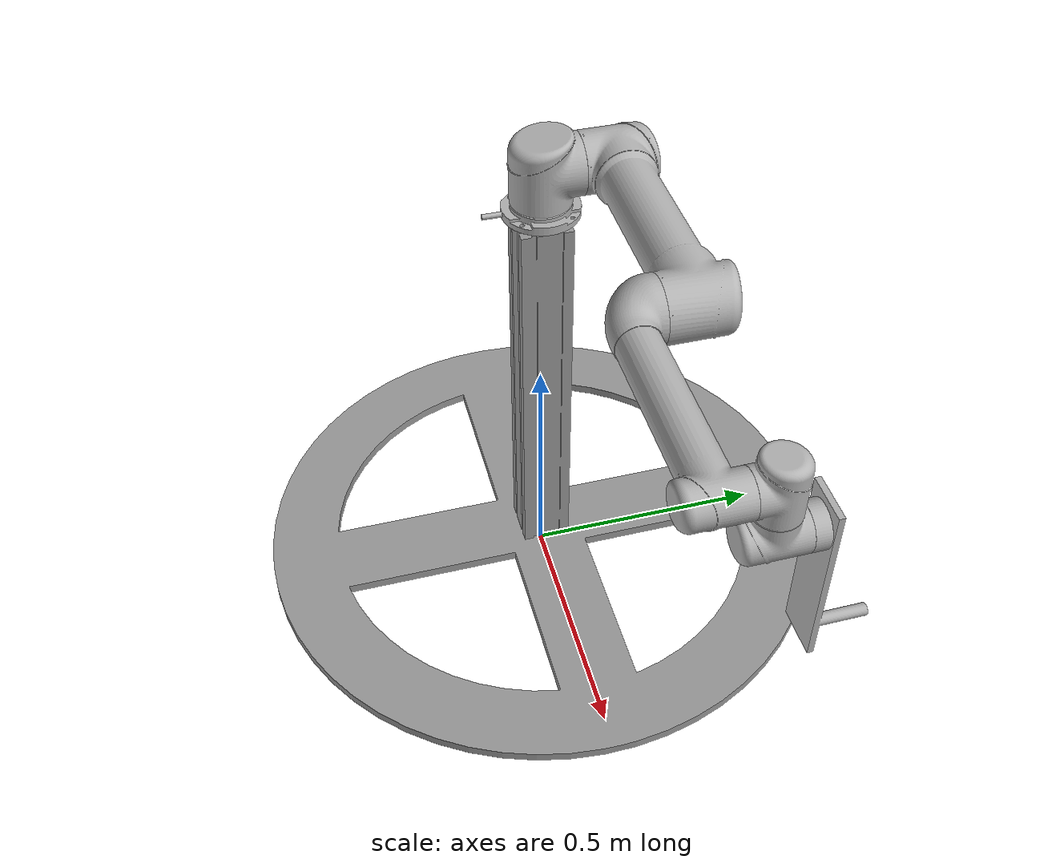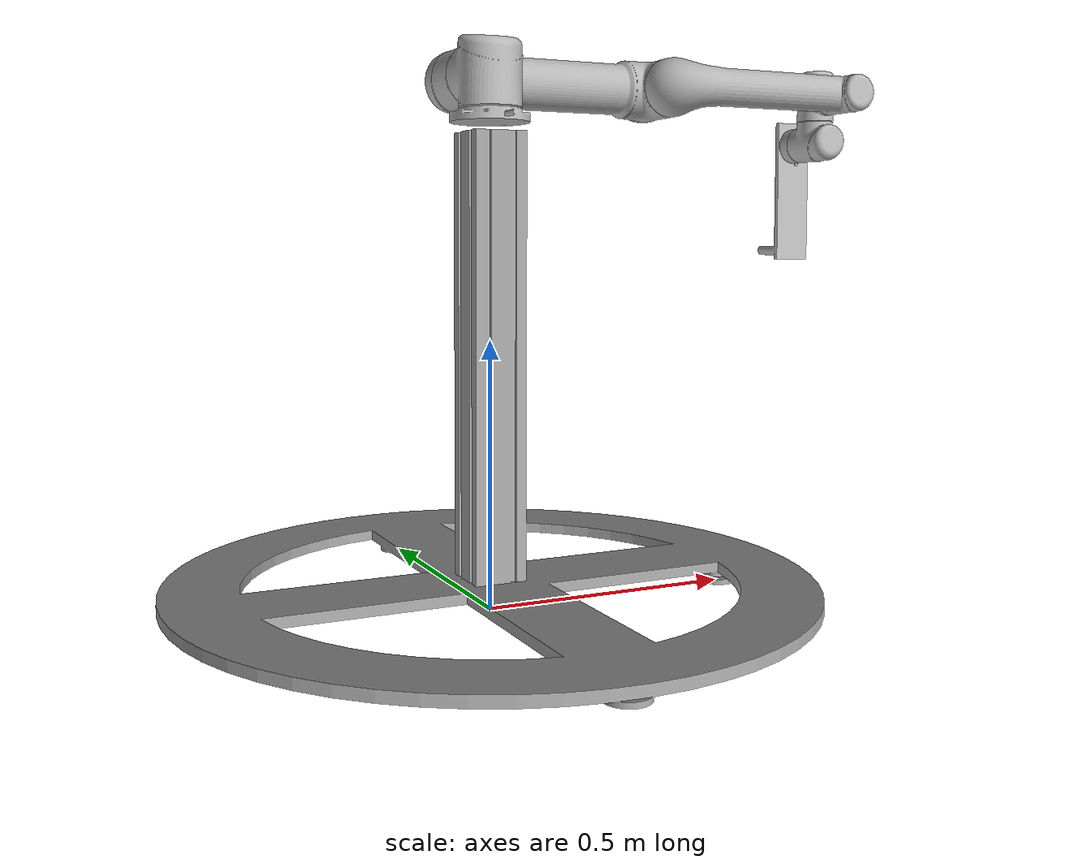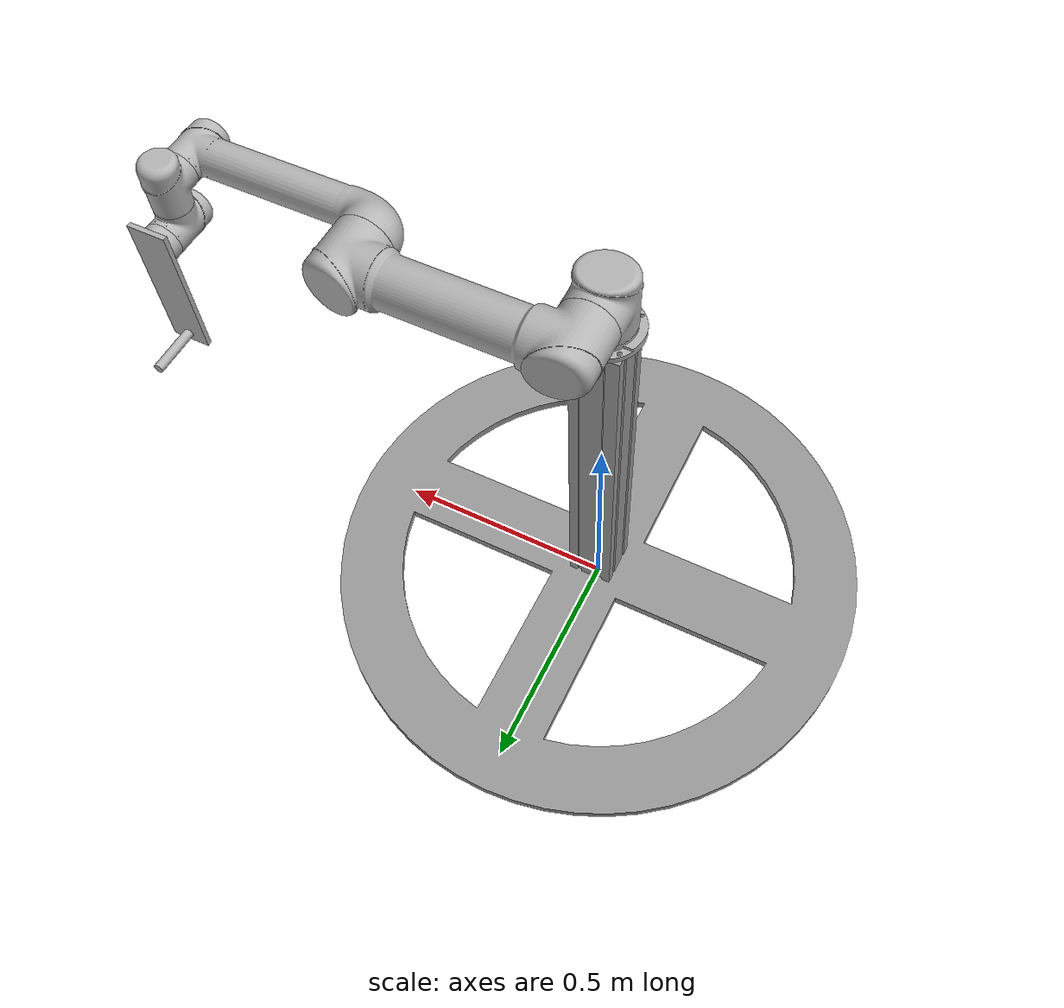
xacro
<?xml version="1.0"?>
<robot xmlns:xacro="http://www.ros.org/wiki/xacro"
       name="ur5" >

  <!-- common stuff -->
  <xacro:include filename="$(find ur_description)/urdf/gazebo.urdf.xacro" />

  <!-- ur5 -->
  <xacro:include filename="$(find ur_description)/urdf/ur5.urdf.xacro" />

  <!-- arm -->
  <xacro:ur5_robot prefix="" joint_limited="true"/>

  <!-- gazebo material-->
  <xacro:include filename="$(find ur_description)/urdf/ur5.gazebo" />
  <xacro:include filename="$(find ur_description)/urdf/materials.xacro" />

  <!-- param-->
  <xacro:property name="width" value="0.1" /> <!-- Square dimensions (widthxwidth) of beams -->
  <xacro:property name="height1" value="0.9" />

  <link name="world" />

  <joint name="world_joint" type="fixed">
    <parent link="world" />
    <child link = "link1" />
    <origin xyz="0.0 0.0 0.0" rpy="0.0 0.0 0.0" />
  </joint>
  <link name="link1">
    <collision>
      <origin xyz="0.0 0.0 0.45" rpy="0 0 0"/>
      <geometry>
	<box size="0.1 0.1 0.9"/>
      </geometry>
    </collision>

    <visual>
      <origin xyz="-0.6 -0.6 0.0" rpy="0 0 0"/>
      <geometry>
	<mesh filename="package://ur_description/meshes/ur5/visual/column.stl" scale="0.001 0.001 0.001"/>
      </geometry>
      <material name="gray"/>
    </visual>

    <inertial>
      <origin xyz="-0.6 -0.6 0.0" rpy="0 0 0"/>
      <mass value="1"/>
      <inertia
	  ixx="1.0" ixy="0.0" ixz="0.0"
	  iyy="1.0" iyz="0.0"
	  izz="1.0"/>
    </inertial>
  </link>

  <joint name="link1_joint" type="fixed">
    <parent link="link1" />
    <child link = "base_link" />
    <origin xyz="0.0 0.0 ${height1}" rpy="0.0 0.0 0.0" />
  </joint>

</robot>

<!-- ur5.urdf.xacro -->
<robot xmlns:xacro="http://www.ros.org/wiki/xacro">

  <xacro:include filename="$(find ur_description)/urdf/ur5.transmission.xacro" />
  <xacro:include filename="$(find ur_description)/urdf/ur5.gazebo.xacro" />

  <property name="pi" value="3.14159265" />

  <!-- Inertia parameters -->
  <property name="base_mass" value="4.0" />  <!-- This mass might be incorrect -->
  <property name="shoulder_mass" value="3.7000" />
  <property name="upper_arm_mass" value="8.3930" />
  <property name="forearm_mass" value="2.2750" />
  <property name="wrist_1_mass" value="1.2190" />
  <property name="wrist_2_mass" value="1.2190" />
  <property name="wrist_3_mass" value="0.1879" />

  <property name="shoulder_cog" value="0.0 0.00193 -0.02561" />
  <property name="upper_arm_cog" value="0.0 -0.024201 0.2125" />
  <property name="forearm_cog" value="0.0 0.0265 0.11993" />
  <property name="wrist_1_cog" value="0.0 0.110949 0.01634" />
  <property name="wrist_2_cog" value="0.0 0.0018 0.11099" />
  <property name="wrist_3_cog" value="0.0 0.001159 0.0" />

  <!-- Kinematic model -->
  <!-- Properties from urcontrol.conf -->
  <property name="ur5_d1" value="0.089159" />
  <property name="ur5_a2" value="-0.42500" />
  <property name="ur5_a3" value="-0.39225" />
  <property name="ur5_d4" value="0.10915" />
  <property name="ur5_d5" value="0.09465" />
  <property name="ur5_d6" value="0.0823" />

  <!-- Arbitrary offsets for shoulder/elbow joints -->
  <property name="shoulder_offset" value="0.13585" />  <!-- measured from model -->
  <property name="elbow_offset" value="-0.1197" /> <!-- measured from model -->

  <!-- link lengths used in model -->
  <property name="shoulder_height" value="${ur5_d1}" />
  <property name="upper_arm_length" value="${-ur5_a2}" />
  <property name="forearm_length" value="${-ur5_a3}" />
  <property name="wrist_1_length" value="${ur5_d4 - elbow_offset - shoulder_offset}" />
  <property name="wrist_2_length" value="${ur5_d5}" />
  <property name="wrist_3_length" value="${ur5_d6}" />
  <!--property name="shoulder_height" value="0.089159" /-->
  <!--property name="shoulder_offset" value="0.13585" /-->  <!-- shoulder_offset - elbow_offset + wrist_1_length = 0.10915 -->
  <!--property name="upper_arm_length" value="0.42500" /-->
  <!--property name="elbow_offset" value="0.1197" /-->       <!-- CAD measured -->
  <!--property name="forearm_length" value="0.39225" /-->
  <!--property name="wrist_1_length" value="0.093" /-->     <!-- CAD measured -->
  <!--property name="wrist_2_length" value="0.09465" /-->   <!-- In CAD this distance is 0.930, but in the spec it is 0.09465 -->
  <!--property name="wrist_3_length" value="0.0823" /-->

  <property name="shoulder_radius" value="0.060" />   <!-- manually measured -->
  <property name="upper_arm_radius" value="0.054" />  <!-- manually measured -->
  <property name="elbow_radius" value="0.060" />      <!-- manually measured -->
  <property name="forearm_radius" value="0.040" />    <!-- manually measured -->
  <property name="wrist_radius" value="0.045" />      <!-- manually measured -->

  <xacro:macro name="cylinder_inertial" params="radius length mass *origin">
    <inertial>
      <mass value="${mass}" />
      <insert_block name="origin" />
      <inertia ixx="${0.0833333 * mass * (3 * radius * radius + length * length)}" ixy="0.0" ixz="0.0"
        iyy="${0.0833333 * mass * (3 * radius * radius + length * length)}" iyz="0.0"
        izz="${0.5 * mass * radius * radius}" />
    </inertial>
  </xacro:macro>

  <xacro:macro name="ur5_robot" params="prefix joint_limited">

    <link name="${prefix}base_link" >
      <visual>
        <geometry>
          <mesh filename="package://ur_description/meshes/ur5/visual/Base.dae" />
        </geometry>
        <material name="LightGrey">
          <color rgba="0.7 0.7 0.7 1.0"/>
        </material>
      </visual>
      <collision>
        <geometry>
          <mesh filename="package://ur_description/meshes/ur5/collision/base.stl" />
        </geometry>
      </collision>
      <xacro:cylinder_inertial radius="0.06" length="0.05" mass="${base_mass}">
        <origin xyz="0.0 0.0 0.0" rpy="0 0 0" />
      </xacro:cylinder_inertial>
    </link>

    <joint name="${prefix}shoulder_pan_joint" type="revolute">
      <parent link="${prefix}base_link" />
      <child link = "${prefix}shoulder_link" />
      <origin xyz="0.0 0.0 ${shoulder_height}" rpy="0.0 0.0 0.0" />
      <axis xyz="0 0 1" />
      <xacro:unless value="${joint_limited}">
        <limit lower="${-2.0 * pi}" upper="${2.0 * pi}" effort="150.0" velocity="3.15"/>
      </xacro:unless>
      <xacro:if value="${joint_limited}">
        <limit lower="${-pi}" upper="${pi}" effort="150.0" velocity="3.15"/>
      </xacro:if>
      <dynamics damping="0.0" friction="0.0"/>
    </joint>

    <link name="${prefix}shoulder_link">
      <visual>
        <geometry>
          <mesh filename="package://ur_description/meshes/ur5/visual/Shoulder.dae" />
        </geometry>
        <material name="LightGrey">
          <color rgba="0.7 0.7 0.7 1.0"/>
        </material>
      </visual>
      <collision>
        <geometry>
          <mesh filename="package://ur_description/meshes/ur5/collision/shoulder.stl" />
        </geometry>
      </collision>
      <xacro:cylinder_inertial radius="0.06" length="0.15" mass="${shoulder_mass}">
        <origin xyz="0.0 0.0 0.0" rpy="0 0 0" />
      </xacro:cylinder_inertial>
    </link>

    <joint name="${prefix}shoulder_lift_joint" type="revolute">
      <parent link="${prefix}shoulder_link" />
      <child link = "${prefix}upper_arm_link" />
      <origin xyz="0.0 ${shoulder_offset} 0.0" rpy="0.0 ${pi / 2.0} 0.0" />
      <axis xyz="0 1 0" />
      <xacro:unless value="${joint_limited}">
        <limit lower="${-2.0 * pi}" upper="${2.0 * pi}" effort="150.0" velocity="3.15"/>
      </xacro:unless>
      <xacro:if value="${joint_limited}">
        <limit lower="${-pi}" upper="${pi}" effort="150.0" velocity="3.15"/>
      </xacro:if>
      <dynamics damping="0.0" friction="0.0"/>
    </joint>

    <link name="${prefix}upper_arm_link">
      <visual>
        <geometry>
          <mesh filename="package://ur_description/meshes/ur5/visual/UpperArm.dae" />
        </geometry>
        <material name="LightGrey">
          <color rgba="0.7 0.7 0.7 1.0"/>
        </material>
      </visual>
      <collision>
        <geometry>
          <mesh filename="package://ur_description/meshes/ur5/collision/upper_arm.stl" />
        </geometry>
      </collision>
      <xacro:cylinder_inertial radius="0.06" length="0.56" mass="${upper_arm_mass}">
        <origin xyz="0.0 0.0 0.28" rpy="0 0 0" />
      </xacro:cylinder_inertial>
    </link>

    <joint name="${prefix}elbow_joint" type="revolute">
      <parent link="${prefix}upper_arm_link" />
      <child link = "${prefix}forearm_link" />
      <origin xyz="0.0 ${elbow_offset} ${upper_arm_length}" rpy="0.0 0.0 0.0" />
      <axis xyz="0 1 0" />
      <xacro:unless value="${joint_limited}">
        <limit lower="${-2.0 * pi}" upper="${2.0 * pi}" effort="150.0" velocity="3.15"/>
      </xacro:unless>
      <xacro:if value="${joint_limited}">
        <limit lower="${-pi}" upper="${pi}" effort="150.0" velocity="3.15"/>
      </xacro:if>
      <dynamics damping="0.0" friction="0.0"/>
    </joint>

    <link name="${prefix}forearm_link">
      <visual>
        <geometry>
          <mesh filename="package://ur_description/meshes/ur5/visual/Forearm.dae" />
        </geometry>
        <material name="LightGrey">
          <color rgba="0.7 0.7 0.7 1.0"/>
        </material>
      </visual>
      <collision>
        <geometry>
          <mesh filename="package://ur_description/meshes/ur5/collision/forearm.stl" />
        </geometry>
      </collision>
      <xacro:cylinder_inertial radius="0.06" length="0.5" mass="${forearm_mass}">
        <origin xyz="0.0 0.0 0.25" rpy="0 0 0" />
      </xacro:cylinder_inertial>
    </link>

    <joint name="${prefix}wrist_1_joint" type="revolute">
      <parent link="${prefix}forearm_link" />
      <child link = "${prefix}wrist_1_link" />
      <origin xyz="0.0 0.0 ${forearm_length}" rpy="0.0 ${pi / 2.0} 0.0" />
      <axis xyz="0 1 0" />
      <xacro:unless value="${joint_limited}">
        <limit lower="${-2.0 * pi}" upper="${2.0 * pi}" effort="28.0" velocity="3.2"/>
      </xacro:unless>
      <xacro:if value="${joint_limited}">
        <limit lower="${-pi}" upper="${pi}" effort="28.0" velocity="3.2"/>
      </xacro:if>
      <dynamics damping="0.0" friction="0.0"/>
    </joint>

    <link name="${prefix}wrist_1_link">
      <visual>
        <geometry>
          <mesh filename="package://ur_description/meshes/ur5/visual/Wrist1.dae" />
        </geometry>
        <material name="LightGrey">
          <color rgba="0.7 0.7 0.7 1.0"/>
        </material>
      </visual>
      <collision>
        <geometry>
          <mesh filename="package://ur_description/meshes/ur5/collision/wrist_1.stl" />
        </geometry>
      </collision>
      <xacro:cylinder_inertial radius="0.6" length="0.12" mass="${wrist_1_mass}">
        <origin xyz="0.0 0.0 0.0" rpy="0 0 0" />
      </xacro:cylinder_inertial>
    </link>

    <joint name="${prefix}wrist_2_joint" type="revolute">
      <parent link="${prefix}wrist_1_link" />
      <child link = "${prefix}wrist_2_link" />
      <origin xyz="0.0 ${wrist_1_length} 0.0" rpy="0.0 0.0 0.0" />
      <axis xyz="0 0 1" />
      <xacro:unless value="${joint_limited}">
        <limit lower="${-2.0 * pi}" upper="${2.0 * pi}" effort="28.0" velocity="3.2"/>
      </xacro:unless>
      <xacro:if value="${joint_limited}">
        <limit lower="${-pi}" upper="${pi}" effort="28.0" velocity="3.2"/>
      </xacro:if>
      <dynamics damping="0.0" friction="0.0"/>
    </joint>

    <link name="${prefix}wrist_2_link">
      <visual>
        <geometry>
          <mesh filename="package://ur_description/meshes/ur5/visual/Wrist2.dae" />
        </geometry>
        <material name="LightGrey">
          <color rgba="0.7 0.7 0.7 1.0"/>
        </material>
      </visual>
      <collision>
        <geometry>
          <mesh filename="package://ur_description/meshes/ur5/collision/wrist_2.stl" />
        </geometry>
      </collision>
      <xacro:cylinder_inertial radius="0.6" length="0.12" mass="${wrist_2_mass}">
        <origin xyz="0.0 0.0 0.0" rpy="0 0 0" />
      </xacro:cylinder_inertial>
    </link>

    <joint name="${prefix}wrist_3_joint" type="revolute">
      <parent link="${prefix}wrist_2_link" />
      <child link = "${prefix}wrist_3_link" />
      <origin xyz="0.0 0.0 ${wrist_2_length}" rpy="0.0 0.0 0.0" />
      <axis xyz="0 1 0" />
      <xacro:unless value="${joint_limited}">
        <limit lower="${-2.0 * pi}" upper="${2.0 * pi}" effort="28.0" velocity="3.2"/>
      </xacro:unless>
      <xacro:if value="${joint_limited}">
        <limit lower="${-pi}" upper="${pi}" effort="28.0" velocity="3.2"/>
      </xacro:if>
      <dynamics damping="0.0" friction="0.0"/>
    </joint>

    <link name="${prefix}wrist_3_link">
      <visual>
        <geometry>
          <mesh filename="package://ur_description/meshes/ur5/visual/Wrist3.dae" />
        </geometry>
        <material name="LightGrey">
          <color rgba="0.7 0.7 0.7 1.0"/>
        </material>
      </visual>
      <collision>
        <geometry>
          <mesh filename="package://ur_description/meshes/ur5/collision/wrist_3.stl" />
        </geometry>
      </collision>
      <xacro:cylinder_inertial radius="0.6" length="0.12" mass="${wrist_3_mass}">
        <origin xyz="0.0 0.0 0.0" rpy="0 0 0" />
      </xacro:cylinder_inertial>
    </link>

    <joint name="${prefix}ee_fixed_joint" type="fixed">
      <parent link="${prefix}wrist_3_link" />
      <child link = "${prefix}ee_link" />
      <origin xyz="0.0 ${wrist_3_length} 0.0" rpy="${pi/2.0} 0.0 ${pi/2.0}" />
    </joint>

    <link name="${prefix}ee_link">
      <collision>
        <origin xyz="0.04 0.1 0.0" rpy="0 0 0"/>
        <geometry>
          <box size="0.08 0.3 0.10"/>
        </geometry>
      </collision>
      <visual>
        <origin xyz="0.1 -0.05 -0.04" rpy="0 -1.57 0"/>
        <geometry>
          <mesh filename="package://ur_description/meshes/ur5/visual/ur5_tmp_vaccum.STL" scale="0.001 0.001 0.001"/>
        </geometry>
        <material name="orange">
          <color rgba="0.7 0.7 0.7 1.0"/>
        </material>
      </visual>
    </link>

    <joint name="$vaccum_joint" type="fixed">
      <parent link="${prefix}ee_link" />
      <child link = "${prefix}vaccum_link" />
      <origin xyz="0.1 0.23 0.0" rpy="0.0 0.0 0.0" />
    </joint>

    <link name="${prefix}vaccum_link">
      <collision>
        <geometry>
          <box size="0.01 0.01 0.01"/>
        </geometry>
        <origin rpy="0 0 0" xyz="0.0 0 0"/>
      </collision>
    </link>

    <xacro:ur5_arm_transmission prefix="${prefix}" />
    <xacro:ur5_arm_gazebo prefix="${prefix}" />

    <!-- ROS base_link to UR 'Base' Coordinates transform -->
    <link name="${prefix}base"/>
    <joint name="${prefix}base_link-base_fixed_joint" type="fixed">
      <!-- NOTE: this rotation is only needed as long as base_link itself is
                 not corrected wrt the real robot (ie: rotated over 180
                 degrees)
      -->
      <origin xyz="0 0 0" rpy="0 0 ${-pi}"/>
      <parent link="${prefix}base_link"/>
      <child link="${prefix}base"/>
    </joint>

    <!-- Frame coincident with all-zeros TCP on UR controller -->
    <link name="${prefix}tool0"/>
    <joint name="${prefix}wrist_3_link-tool0_fixed_joint" type="fixed">
      <origin xyz="0 ${wrist_3_length} 0" rpy="${pi/-2.0} 0 0"/>
      <parent link="${prefix}wrist_3_link"/>
      <child link="${prefix}tool0"/>
    </joint>

  </xacro:macro>
</robot>
